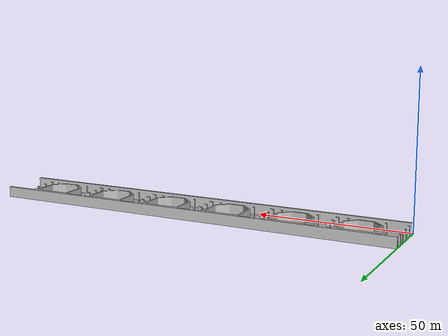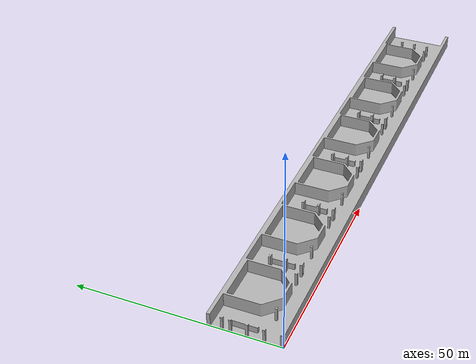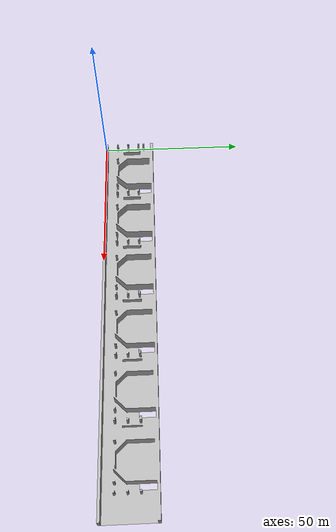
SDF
<?xml version="1.0"?>
<!-- 电气夹层静态场景（由 SolidWorks 导出的单 link 网格，迁移为 SDF）。
     URDF 版在经 gazebo_ros 的 URDF→SDF 转换时会把 mesh 掉成空模型，
     因此场景地板直接以 SDF 提供，spawn 时视觉/碰撞均能正确加载。
     网格沿用原 link 名 dianqi_ground；网格本体仍是原始 STL，未改动几何。 -->
<sdf version="1.6">
  <model name="electrical_mezzanine">
    <static>true</static>
    <link name="dianqi_ground">
      <visual name="visual">
        <geometry>
          <mesh>
            <uri>model://xczs_inspection_robot_description/meshes/scenes/electrical_mezzanine/dianqi_ground.STL</uri>
          </mesh>
        </geometry>
        <material>
          <ambient>0.69804 0.69804 0.69804 1</ambient>
          <diffuse>0.69804 0.69804 0.69804 1</diffuse>
          <specular>0.1 0.1 0.1 1</specular>
        </material>
      </visual>
      <collision name="collision">
        <geometry>
          <mesh>
            <uri>model://xczs_inspection_robot_description/meshes/scenes/electrical_mezzanine/dianqi_ground.STL</uri>
          </mesh>
        </geometry>
      </collision>
    </link>
  </model>
</sdf>
